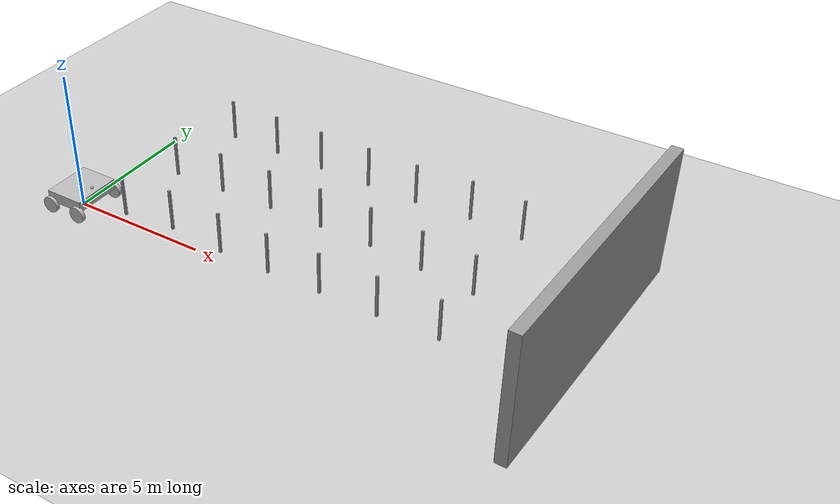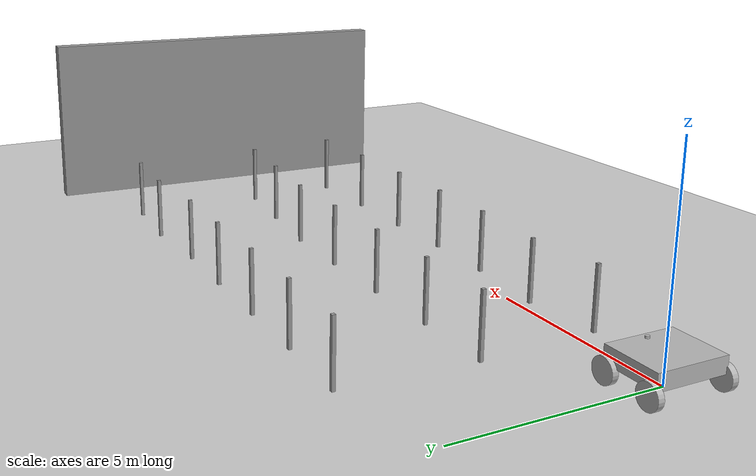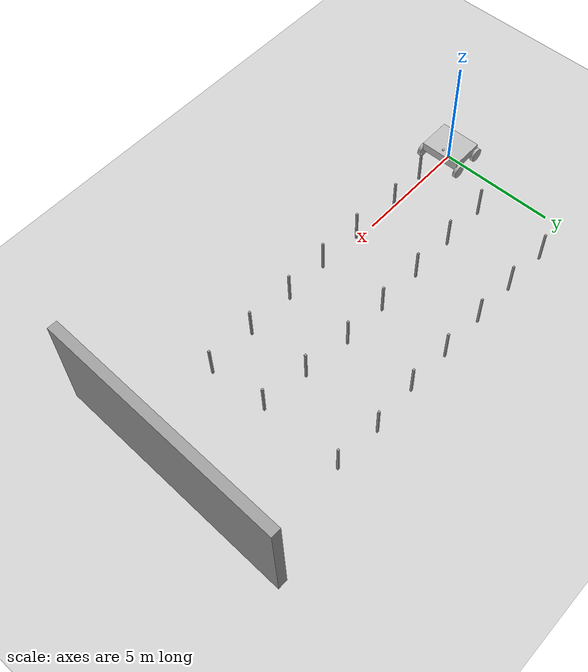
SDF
<sdf version="1.7">
 <world name="default">
  <light name="sun" type="directional">
   <pose>0 0 10 0 -0 0</pose>
   <diffuse>0.8 0.8 0.8 1</diffuse>
   <specular>0.2 0.2 0.2 1</specular>
   <attenuation>
    <range>1000</range>
    <constant>0.9</constant>
    <linear>0.01</linear>
    <quadratic>0.001</quadratic>
   </attenuation>
   <direction>-0.5 0.1 -0.9</direction>
   <spot><inner_angle>0</inner_angle><outer_angle>0</outer_angle><falloff>0</falloff></spot>
  </light>
  <model name="ground_plane">
   <static>1</static>
   <link name="link">
    <collision name="collision">
     <geometry><plane><normal>0 0 1</normal><size>100 100</size></plane></geometry>
     <surface><friction><ode><mu>100</mu><mu2>50</mu2></ode></friction></surface>
    </collision>
    <visual name="visual">
     <cast_shadows>0</cast_shadows>
     <geometry><plane><normal>0 0 1</normal><size>100 100</size></plane></geometry>
     <material>
      <script><uri>file://media/materials/scripts/gazebo.material</uri><name>Gazebo/Grey</name></script>
     </material>
    </visual>
   </link>
  </model>
  <gravity>0 0 -9.8</gravity>
  <magnetic_field>6e-06 2.3e-05 -4.2e-05</magnetic_field>
  <atmosphere type="adiabatic"/>
  <physics type="dartsim">
   <max_step_size>0.001</max_step_size>
   <real_time_factor>1</real_time_factor>
   <real_time_update_rate>1000</real_time_update_rate>
  </physics>
  <scene><ambient>0.4 0.4 0.4 1</ambient><background>0.7 0.7 0.7 1</background><shadows>1</shadows></scene>
  <audio><device>default</device></audio>
  <spherical_coordinates>
   <surface_model>EARTH_WGS84</surface_model>
   <latitude_deg>0</latitude_deg>
   <longitude_deg>0</longitude_deg>
   <elevation>0</elevation>
   <heading_deg>0</heading_deg>
  </spherical_coordinates>
  <model name="unit_box">
   <pose>2.02917 -0.015451 1.0946 -2.7e-05 0 -0.003156</pose>
   <link name="link">
    <inertial>
     <mass>1</mass>
     <inertia>
      <ixx>0.166667</ixx>
      <ixy>0</ixy>
      <ixz>0</ixz>
      <iyy>0.166667</iyy>
      <iyz>0</iyz>
      <izz>0.166667</izz>
     </inertia>
    </inertial>
    <collision name="collision"><geometry><box><size>0.083 0.082 1.532</size></box></geometry></collision>
    <visual name="visual">
     <geometry><box><size>0.083 0.082 1.532</size></box></geometry>
     <material>
      <script><name>Gazebo/Grey</name><uri>file://media/materials/scripts/gazebo.material</uri></script>
     </material>
    </visual>
   </link>
  </model>
  <model name="unit_box_clone">
   <pose>3.9137 0.192302 1.0946 3e-06 1e-06 -0.002454</pose>
   <link name="link">
    <inertial>
     <mass>1</mass>
     <inertia>
      <ixx>0.166667</ixx>
      <ixy>0</ixy>
      <ixz>0</ixz>
      <iyy>0.166667</iyy>
      <iyz>0</iyz>
      <izz>0.166667</izz>
     </inertia>
    </inertial>
    <collision name="collision"><geometry><box><size>0.083 0.082 1.532</size></box></geometry></collision>
    <visual name="visual">
     <geometry><box><size>0.083 0.082 1.532</size></box></geometry>
     <material>
      <script><name>Gazebo/Grey</name><uri>file://media/materials/scripts/gazebo.material</uri></script>
     </material>
    </visual>
   </link>
  </model>
  <model name="unit_box_clone_0">
   <pose>6.06088 0.026691 1.0946 -2e-06 -1e-06 -0.001239</pose>
   <link name="link">
    <inertial>
     <mass>1</mass>
     <inertia>
      <ixx>0.166667</ixx>
      <ixy>0</ixy>
      <ixz>0</ixz>
      <iyy>0.166667</iyy>
      <iyz>0</iyz>
      <izz>0.166667</izz>
     </inertia>
    </inertial>
    <collision name="collision"><geometry><box><size>0.083 0.082 1.532</size></box></geometry></collision>
    <visual name="visual">
     <geometry><box><size>0.083 0.082 1.532</size></box></geometry>
     <material>
      <script><name>Gazebo/Grey</name><uri>file://media/materials/scripts/gazebo.material</uri></script>
     </material>
    </visual>
   </link>
  </model>
  <model name="unit_box_clone_1">
   <pose>8.00669 -0.017407 1.0946 1e-06 -1e-06 -0.002535</pose>
   <link name="link">
    <inertial>
     <mass>1</mass>
     <inertia>
      <ixx>0.166667</ixx>
      <ixy>0</ixy>
      <ixz>0</ixz>
      <iyy>0.166667</iyy>
      <iyz>0</iyz>
      <izz>0.166667</izz>
     </inertia>
    </inertial>
    <collision name="collision"><geometry><box><size>0.083 0.082 1.532</size></box></geometry></collision>
    <visual name="visual">
     <geometry><box><size>0.083 0.082 1.532</size></box></geometry>
     <material>
      <script><name>Gazebo/Grey</name><uri>file://media/materials/scripts/gazebo.material</uri></script>
     </material>
    </visual>
   </link>
  </model>
  <model name="unit_box_clone_2">
   <pose>9.95266 0.019221 1.0946 -3e-06 -9e-06 -0.002631</pose>
   <link name="link">
    <inertial>
     <mass>1</mass>
     <inertia>
      <ixx>0.166667</ixx>
      <ixy>0</ixy>
      <ixz>0</ixz>
      <iyy>0.166667</iyy>
      <iyz>0</iyz>
      <izz>0.166667</izz>
     </inertia>
    </inertial>
    <collision name="collision"><geometry><box><size>0.083 0.082 1.532</size></box></geometry></collision>
    <visual name="visual">
     <geometry><box><size>0.083 0.082 1.532</size></box></geometry>
     <material>
      <script><name>Gazebo/Grey</name><uri>file://media/materials/scripts/gazebo.material</uri></script>
     </material>
    </visual>
   </link>
  </model>
  <model name="unit_box_clone_3">
   <pose>12.0553 0.021001 1.0946 4e-06 -5e-06 -0.003196</pose>
   <link name="link">
    <inertial>
     <mass>1</mass>
     <inertia>
      <ixx>0.166667</ixx>
      <ixy>0</ixy>
      <ixz>0</ixz>
      <iyy>0.166667</iyy>
      <iyz>0</iyz>
      <izz>0.166667</izz>
     </inertia>
    </inertial>
    <collision name="collision"><geometry><box><size>0.083 0.082 1.532</size></box></geometry></collision>
    <visual name="visual">
     <geometry><box><size>0.083 0.082 1.532</size></box></geometry>
     <material>
      <script><name>Gazebo/Grey</name><uri>file://media/materials/scripts/gazebo.material</uri></script>
     </material>
    </visual>
   </link>
  </model>
  <model name="unit_box_clone_4">
   <pose>14.1944 0.089534 1.0946 1e-06 -5e-06 -0.002131</pose>
   <link name="link">
    <inertial>
     <mass>1</mass>
     <inertia>
      <ixx>0.166667</ixx>
      <ixy>0</ixy>
      <ixz>0</ixz>
      <iyy>0.166667</iyy>
      <iyz>0</iyz>
      <izz>0.166667</izz>
     </inertia>
    </inertial>
    <collision name="collision"><geometry><box><size>0.083 0.082 1.532</size></box></geometry></collision>
    <visual name="visual">
     <geometry><box><size>0.083 0.082 1.532</size></box></geometry>
     <material>
      <script><name>Gazebo/Grey</name><uri>file://media/materials/scripts/gazebo.material</uri></script>
     </material>
    </visual>
   </link>
  </model>
  <model name="unit_box_clone_5">
   <pose>1.90923 2.92164 1.0946 -8e-06 4e-06 -0.003171</pose>
   <link name="link">
    <inertial>
     <mass>1</mass>
     <inertia>
      <ixx>0.166667</ixx>
      <ixy>0</ixy>
      <ixz>0</ixz>
      <iyy>0.166667</iyy>
      <iyz>0</iyz>
      <izz>0.166667</izz>
     </inertia>
    </inertial>
    <collision name="collision"><geometry><box><size>0.083 0.082 1.532</size></box></geometry></collision>
    <visual name="visual">
     <geometry><box><size>0.083 0.082 1.532</size></box></geometry>
     <material>
      <script><name>Gazebo/Grey</name><uri>file://media/materials/scripts/gazebo.material</uri></script>
     </material>
    </visual>
   </link>
  </model>
  <model name="unit_box_clone_6">
   <pose>3.92238 2.9318 1.0946 -0 2e-06 -0.003395</pose>
   <link name="link">
    <inertial>
     <mass>1</mass>
     <inertia>
      <ixx>0.166667</ixx>
      <ixy>0</ixy>
      <ixz>0</ixz>
      <iyy>0.166667</iyy>
      <iyz>0</iyz>
      <izz>0.166667</izz>
     </inertia>
    </inertial>
    <collision name="collision"><geometry><box><size>0.083 0.082 1.532</size></box></geometry></collision>
    <visual name="visual">
     <geometry><box><size>0.083 0.082 1.532</size></box></geometry>
     <material>
      <script><name>Gazebo/Grey</name><uri>file://media/materials/scripts/gazebo.material</uri></script>
     </material>
    </visual>
   </link>
  </model>
  <model name="unit_box_clone_7">
   <pose>5.96161 2.97251 1.0946 4e-06 3.1e-05 -0.002442</pose>
   <link name="link">
    <inertial>
     <mass>1</mass>
     <inertia>
      <ixx>0.166667</ixx>
      <ixy>0</ixy>
      <ixz>0</ixz>
      <iyy>0.166667</iyy>
      <iyz>0</iyz>
      <izz>0.166667</izz>
     </inertia>
    </inertial>
    <collision name="collision"><geometry><box><size>0.083 0.082 1.532</size></box></geometry></collision>
    <visual name="visual">
     <geometry><box><size>0.083 0.082 1.532</size></box></geometry>
     <material>
      <script><name>Gazebo/Grey</name><uri>file://media/materials/scripts/gazebo.material</uri></script>
     </material>
    </visual>
   </link>
  </model>
  <model name="unit_box_clone_8">
   <pose>8.01955 2.99096 1.0946 -3e-06 -1e-06 -0.002984</pose>
   <link name="link">
    <inertial>
     <mass>1</mass>
     <inertia>
      <ixx>0.166667</ixx>
      <ixy>0</ixy>
      <ixz>0</ixz>
      <iyy>0.166667</iyy>
      <iyz>0</iyz>
      <izz>0.166667</izz>
     </inertia>
    </inertial>
    <collision name="collision"><geometry><box><size>0.083 0.082 1.532</size></box></geometry></collision>
    <visual name="visual">
     <geometry><box><size>0.083 0.082 1.532</size></box></geometry>
     <material>
      <script><name>Gazebo/Grey</name><uri>file://media/materials/scripts/gazebo.material</uri></script>
     </material>
    </visual>
   </link>
  </model>
  <model name="unit_box_clone_9">
   <pose>9.99926 2.97755 1.0946 -3.6e-05 4e-06 -0.002844</pose>
   <link name="link">
    <inertial>
     <mass>1</mass>
     <inertia>
      <ixx>0.166667</ixx>
      <ixy>0</ixy>
      <ixz>0</ixz>
      <iyy>0.166667</iyy>
      <iyz>0</iyz>
      <izz>0.166667</izz>
     </inertia>
    </inertial>
    <collision name="collision"><geometry><box><size>0.083 0.082 1.532</size></box></geometry></collision>
    <visual name="visual">
     <geometry><box><size>0.083 0.082 1.532</size></box></geometry>
     <material>
      <script><name>Gazebo/Grey</name><uri>file://media/materials/scripts/gazebo.material</uri></script>
     </material>
    </visual>
   </link>
  </model>
  <model name="unit_box_clone_10">
   <pose>12.0493 2.75718 1.0946 0 3e-06 -0.002534</pose>
   <link name="link">
    <inertial>
     <mass>1</mass>
     <inertia>
      <ixx>0.166667</ixx>
      <ixy>0</ixy>
      <ixz>0</ixz>
      <iyy>0.166667</iyy>
      <iyz>0</iyz>
      <izz>0.166667</izz>
     </inertia>
    </inertial>
    <collision name="collision"><geometry><box><size>0.083 0.082 1.532</size></box></geometry></collision>
    <visual name="visual">
     <geometry><box><size>0.083 0.082 1.532</size></box></geometry>
     <material>
      <script><name>Gazebo/Grey</name><uri>file://media/materials/scripts/gazebo.material</uri></script>
     </material>
    </visual>
   </link>
  </model>
  <model name="unit_box_clone_5_clone">
   <pose>2.08925 6.07944 1.0946 -1.4e-05 0 -0.002486</pose>
   <link name="link">
    <inertial>
     <mass>1</mass>
     <inertia>
      <ixx>0.166667</ixx>
      <ixy>0</ixy>
      <ixz>0</ixz>
      <iyy>0.166667</iyy>
      <iyz>0</iyz>
      <izz>0.166667</izz>
     </inertia>
    </inertial>
    <collision name="collision"><geometry><box><size>0.083 0.082 1.532</size></box></geometry></collision>
    <visual name="visual">
     <geometry><box><size>0.083 0.082 1.532</size></box></geometry>
     <material>
      <script><name>Gazebo/Grey</name><uri>file://media/materials/scripts/gazebo.material</uri></script>
     </material>
    </visual>
   </link>
  </model>
  <model name="unit_box_clone_5_clone_0">
   <pose>4.08311 6.03442 1.0946 1e-06 -2e-06 -0.002696</pose>
   <link name="link">
    <inertial>
     <mass>1</mass>
     <inertia>
      <ixx>0.166667</ixx>
      <ixy>0</ixy>
      <ixz>0</ixz>
      <iyy>0.166667</iyy>
      <iyz>0</iyz>
      <izz>0.166667</izz>
     </inertia>
    </inertial>
    <collision name="collision"><geometry><box><size>0.083 0.082 1.532</size></box></geometry></collision>
    <visual name="visual">
     <geometry><box><size>0.083 0.082 1.532</size></box></geometry>
     <material>
      <script><name>Gazebo/Grey</name><uri>file://media/materials/scripts/gazebo.material</uri></script>
     </material>
    </visual>
   </link>
  </model>
  <model name="unit_box_clone_5_clone_1">
   <pose>6.02983 6.02585 1.0946 -2e-06 -0 -0.002626</pose>
   <link name="link">
    <inertial>
     <mass>1</mass>
     <inertia>
      <ixx>0.166667</ixx>
      <ixy>0</ixy>
      <ixz>0</ixz>
      <iyy>0.166667</iyy>
      <iyz>0</iyz>
      <izz>0.166667</izz>
     </inertia>
    </inertial>
    <collision name="collision"><geometry><box><size>0.083 0.082 1.532</size></box></geometry></collision>
    <visual name="visual">
     <geometry><box><size>0.083 0.082 1.532</size></box></geometry>
     <material>
      <script><name>Gazebo/Grey</name><uri>file://media/materials/scripts/gazebo.material</uri></script>
     </material>
    </visual>
   </link>
  </model>
  <model name="unit_box_clone_5_clone_2">
   <pose>8.03525 6.02195 1.0946 9e-06 -2e-06 -0.002666</pose>
   <link name="link">
    <inertial>
     <mass>1</mass>
     <inertia>
      <ixx>0.166667</ixx>
      <ixy>0</ixy>
      <ixz>0</ixz>
      <iyy>0.166667</iyy>
      <iyz>0</iyz>
      <izz>0.166667</izz>
     </inertia>
    </inertial>
    <collision name="collision"><geometry><box><size>0.083 0.082 1.532</size></box></geometry></collision>
    <visual name="visual">
     <geometry><box><size>0.083 0.082 1.532</size></box></geometry>
     <material>
      <script><name>Gazebo/Grey</name><uri>file://media/materials/scripts/gazebo.material</uri></script>
     </material>
    </visual>
   </link>
  </model>
  <model name="unit_box_clone_5_clone_3">
   <pose>9.98023 5.99694 1.0946 -4e-06 -9e-06 -0.003556</pose>
   <link name="link">
    <inertial>
     <mass>1</mass>
     <inertia>
      <ixx>0.166667</ixx>
      <ixy>0</ixy>
      <ixz>0</ixz>
      <iyy>0.166667</iyy>
      <iyz>0</iyz>
      <izz>0.166667</izz>
     </inertia>
    </inertial>
    <collision name="collision"><geometry><box><size>0.083 0.082 1.532</size></box></geometry></collision>
    <visual name="visual">
     <geometry><box><size>0.083 0.082 1.532</size></box></geometry>
     <material>
      <script><name>Gazebo/Grey</name><uri>file://media/materials/scripts/gazebo.material</uri></script>
     </material>
    </visual>
   </link>
  </model>
  <model name="unit_box_clone_5_clone_4">
   <pose>12.0442 6.13498 1.0946 -4e-06 1e-06 -0.003353</pose>
   <link name="link">
    <inertial>
     <mass>1</mass>
     <inertia>
      <ixx>0.166667</ixx>
      <ixy>0</ixy>
      <ixz>0</ixz>
      <iyy>0.166667</iyy>
      <iyz>0</iyz>
      <izz>0.166667</izz>
     </inertia>
    </inertial>
    <collision name="collision"><geometry><box><size>0.083 0.082 1.532</size></box></geometry></collision>
    <visual name="visual">
     <geometry><box><size>0.083 0.082 1.532</size></box></geometry>
     <material>
      <script><name>Gazebo/Grey</name><uri>file://media/materials/scripts/gazebo.material</uri></script>
     </material>
    </visual>
   </link>
  </model>
  <model name="unit_box_clone_5_clone_5">
   <pose>14.0437 2.54905 1.0946 -7e-06 -1e-06 -0.002185</pose>
   <link name="link">
    <inertial>
     <mass>1</mass>
     <inertia>
      <ixx>0.166667</ixx>
      <ixy>0</ixy>
      <ixz>0</ixz>
      <iyy>0.166667</iyy>
      <iyz>0</iyz>
      <izz>0.166667</izz>
     </inertia>
    </inertial>
    <collision name="collision"><geometry><box><size>0.083 0.082 1.532</size></box></geometry></collision>
    <visual name="visual">
     <geometry><box><size>0.083 0.082 1.532</size></box></geometry>
     <material>
      <script><name>Gazebo/Grey</name><uri>file://media/materials/scripts/gazebo.material</uri></script>
     </material>
    </visual>
   </link>
  </model>
  <model name="unit_box_clone_5_clone_6">
   <pose>14.0304 6.02325 1.0946 2e-06 2.1e-05 -0.002358</pose>
   <link name="link">
    <inertial>
     <mass>1</mass>
     <inertia>
      <ixx>0.166667</ixx>
      <ixy>0</ixy>
      <ixz>0</ixz>
      <iyy>0.166667</iyy>
      <iyz>0</iyz>
      <izz>0.166667</izz>
     </inertia>
    </inertial>
    <collision name="collision"><geometry><box><size>0.083 0.082 1.532</size></box></geometry></collision>
    <visual name="visual">
     <geometry><box><size>0.083 0.082 1.532</size></box></geometry>
     <material>
      <script><name>Gazebo/Grey</name><uri>file://media/materials/scripts/gazebo.material</uri></script>
     </material>
    </visual>
   </link>
  </model>
  <model name="unit_box_0">
   <pose>18.0194 2.07476 2.31498 0.003635 0.000123 -0.033753</pose>
   <link name="link">
    <inertial>
     <mass>1</mass>
     <inertia>
      <ixx>0.166667</ixx>
      <ixy>0</ixy>
      <ixz>0</ixz>
      <iyy>0.166667</iyy>
      <iyz>0</iyz>
      <izz>0.166667</izz>
     </inertia>
    </inertial>
    <collision name="collision"><geometry><box><size>0.400867 10.3964 4.66758</size></box></geometry></collision>
    <visual name="visual">
     <geometry><box><size>0.400867 10.3964 4.66758</size></box></geometry>
     <material>
      <script><name>Gazebo/Grey</name><uri>file://media/materials/scripts/gazebo.material</uri></script>
     </material>
    </visual>
   </link>
  </model>
  <light name="user_point_light_0" type="point">
   <pose>-16.4802 -0.898698 1 0 -0 0</pose>
   <diffuse>0.5 0.5 0.5 1</diffuse>
   <specular>0.1 0.1 0.1 1</specular>
   <attenuation>
    <range>20</range>
    <constant>0.5</constant>
    <linear>0.01</linear>
    <quadratic>0.001</quadratic>
   </attenuation>
   <cast_shadows>0</cast_shadows>
   <direction>0 0 -1</direction>
   <spot><inner_angle>0</inner_angle><outer_angle>0</outer_angle><falloff>0</falloff></spot>
  </light>
  <model name="agro_robot">
   <link name="base_link">
    <inertial>
     <pose>0 0 0.272727 0 -0 0</pose>
     <mass>55</mass>
     <inertia><ixx>10.5091</ixx><ixy>0</ixy><ixz>0</ixz><iyy>10.5091</iyy><iyz>0</iyz><izz>10.1</izz></inertia>
    </inertial>
    <collision name="base_link_fixed_joint_lump__chassis_link_collision">
     <pose>0 0 0.3 0 -0 0</pose>
     <geometry><box><size>1.44 1.77 0.4</size></box></geometry>
    </collision>
    <visual name="base_link_visual"><geometry><box><size>0.01 0.01 0.01</size></box></geometry></visual>
    <visual name="base_link_fixed_joint_lump__chassis_link_visual_1">
     <pose>0 0 0.3 0 -0 0</pose>
     <geometry><box><size>1.44 1.77 0.4</size></box></geometry>
    </visual>
    <visual name="base_link_fixed_joint_lump__lidar_link_visual_2">
     <pose>0.5 0 0.55 0 -0 0</pose>
     <geometry><cylinder><length>0.05</length><radius>0.05</radius></cylinder></geometry>
    </visual>
    <sensor name="lidar" type="ray">
     <visualize>1</visualize>
     <update_rate>10</update_rate>
     <ray>
      <scan>
       <horizontal>
        <samples>360</samples>
        <min_angle>-3.14</min_angle>
        <max_angle>3.14</max_angle>
        <resolution>1</resolution>
       </horizontal>
       <vertical><samples>1</samples><min_angle>0</min_angle><max_angle>0</max_angle></vertical>
      </scan>
      <range><min>0.3</min><max>15</max></range>
     </ray>
     <plugin name="lidar_controller" filename="libgazebo_ros_ray_sensor.so">
      <ros><remapping>~/out:=scan</remapping></ros>
      <output_type>sensor_msgs/LaserScan</output_type>
      <frame_name>lidar_link</frame_name>
     </plugin>
     <pose>0.5 0 0.55 0 -0 0</pose>
    </sensor>
   </link>
   <joint name="back_left_wheel_joint" type="revolute">
    <pose relative_to="base_link">-0.6 0.925 0 0 -0 0</pose>
    <parent>base_link</parent>
    <child>back_left_wheel</child>
    <axis>
     <xyz>0 1 0</xyz>
     <limit><lower>-1e+16</lower><upper>1e+16</upper></limit>
     <dynamics><spring_reference>0</spring_reference><spring_stiffness>0</spring_stiffness></dynamics>
    </axis>
   </joint>
   <link name="back_left_wheel">
    <pose relative_to="back_left_wheel_joint">0 0 0 0 -0 0</pose>
    <inertial>
     <mass>5</mass>
     <inertia><ixx>0.1</ixx><ixy>0</ixy><ixz>0</ixz><iyy>0.1</iyy><iyz>0</iyz><izz>0.1</izz></inertia>
    </inertial>
    <collision name="back_left_wheel_collision">
     <pose>0 0 0 1.5708 -0 0</pose>
     <geometry><cylinder><length>0.15</length><radius>0.3</radius></cylinder></geometry>
    </collision>
    <visual name="back_left_wheel_visual">
     <pose>0 0 0 1.5708 -0 0</pose>
     <geometry><cylinder><length>0.15</length><radius>0.3</radius></cylinder></geometry>
    </visual>
   </link>
   <joint name="back_right_wheel_joint" type="revolute">
    <pose relative_to="base_link">-0.6 -0.925 0 0 -0 0</pose>
    <parent>base_link</parent>
    <child>back_right_wheel</child>
    <axis>
     <xyz>0 1 0</xyz>
     <limit><lower>-1e+16</lower><upper>1e+16</upper></limit>
     <dynamics><spring_reference>0</spring_reference><spring_stiffness>0</spring_stiffness></dynamics>
    </axis>
   </joint>
   <link name="back_right_wheel">
    <pose relative_to="back_right_wheel_joint">0 0 0 0 -0 0</pose>
    <inertial>
     <mass>5</mass>
     <inertia><ixx>0.1</ixx><ixy>0</ixy><ixz>0</ixz><iyy>0.1</iyy><iyz>0</iyz><izz>0.1</izz></inertia>
    </inertial>
    <collision name="back_right_wheel_collision">
     <pose>0 0 0 1.5708 -0 0</pose>
     <geometry><cylinder><length>0.15</length><radius>0.3</radius></cylinder></geometry>
    </collision>
    <visual name="back_right_wheel_visual">
     <pose>0 0 0 1.5708 -0 0</pose>
     <geometry><cylinder><length>0.15</length><radius>0.3</radius></cylinder></geometry>
    </visual>
   </link>
   <joint name="front_left_wheel_joint" type="revolute">
    <pose relative_to="base_link">0.6 0.925 0 0 -0 0</pose>
    <parent>base_link</parent>
    <child>front_left_wheel</child>
    <axis>
     <xyz>0 1 0</xyz>
     <limit><lower>-1e+16</lower><upper>1e+16</upper></limit>
     <dynamics><spring_reference>0</spring_reference><spring_stiffness>0</spring_stiffness></dynamics>
    </axis>
   </joint>
   <link name="front_left_wheel">
    <pose relative_to="front_left_wheel_joint">0 0 0 0 -0 0</pose>
    <inertial>
     <mass>5</mass>
     <inertia><ixx>0.1</ixx><ixy>0</ixy><ixz>0</ixz><iyy>0.1</iyy><iyz>0</iyz><izz>0.1</izz></inertia>
    </inertial>
    <collision name="front_left_wheel_collision">
     <pose>0 0 0 1.5708 -0 0</pose>
     <geometry><cylinder><length>0.15</length><radius>0.3</radius></cylinder></geometry>
    </collision>
    <visual name="front_left_wheel_visual">
     <pose>0 0 0 1.5708 -0 0</pose>
     <geometry><cylinder><length>0.15</length><radius>0.3</radius></cylinder></geometry>
    </visual>
   </link>
   <joint name="front_right_wheel_joint" type="revolute">
    <pose relative_to="base_link">0.6 -0.925 0 0 -0 0</pose>
    <parent>base_link</parent>
    <child>front_right_wheel</child>
    <axis>
     <xyz>0 1 0</xyz>
     <limit><lower>-1e+16</lower><upper>1e+16</upper></limit>
     <dynamics><spring_reference>0</spring_reference><spring_stiffness>0</spring_stiffness></dynamics>
    </axis>
   </joint>
   <link name="front_right_wheel">
    <pose relative_to="front_right_wheel_joint">0 0 0 0 -0 0</pose>
    <inertial>
     <mass>5</mass>
     <inertia><ixx>0.1</ixx><ixy>0</ixy><ixz>0</ixz><iyy>0.1</iyy><iyz>0</iyz><izz>0.1</izz></inertia>
    </inertial>
    <collision name="front_right_wheel_collision">
     <pose>0 0 0 1.5708 -0 0</pose>
     <geometry><cylinder><length>0.15</length><radius>0.3</radius></cylinder></geometry>
    </collision>
    <visual name="front_right_wheel_visual">
     <pose>0 0 0 1.5708 -0 0</pose>
     <geometry><cylinder><length>0.15</length><radius>0.3</radius></cylinder></geometry>
    </visual>
   </link>
   <plugin name="agro_joint_state" filename="libgazebo_ros_joint_state_publisher.so">
    <ros><remapping>~/out:=joint_states</remapping></ros>
    <update_rate>30</update_rate>
    <joint_name>front_left_wheel_joint</joint_name>
    <joint_name>front_right_wheel_joint</joint_name>
    <joint_name>back_left_wheel_joint</joint_name>
    <joint_name>back_right_wheel_joint</joint_name>
   </plugin>
   <static>0</static>
   <plugin name="diff_drive" filename="libgazebo_ros_diff_drive.so">
    <ros><remapping>cmd_vel:=cmd_vel</remapping></ros>
    <update_rate>100</update_rate>
    <num_wheel_pairs>2</num_wheel_pairs>
    <left_joint>front_left_wheel_joint</left_joint>
    <left_joint>back_left_wheel_joint</left_joint>
    <right_joint>front_right_wheel_joint</right_joint>
    <right_joint>back_right_wheel_joint</right_joint>
    <wheel_separation>1.85</wheel_separation>
    <wheel_diameter>0.6</wheel_diameter>
    <max_wheel_torque>500</max_wheel_torque>
    <max_wheel_acceleration>5.0</max_wheel_acceleration>
    <publish_odom>1</publish_odom>
    <publish_odom_tf>1</publish_odom_tf>
    <publish_wheel_tf>1</publish_wheel_tf>
    <odometry_frame>odom</odometry_frame>
    <robot_base_frame>base_link</robot_base_frame>
   </plugin>
   <pose>-0.00246 0.012687 0.299992 -8e-06 -0 -7e-06</pose>
  </model>
 </world>
</sdf>
